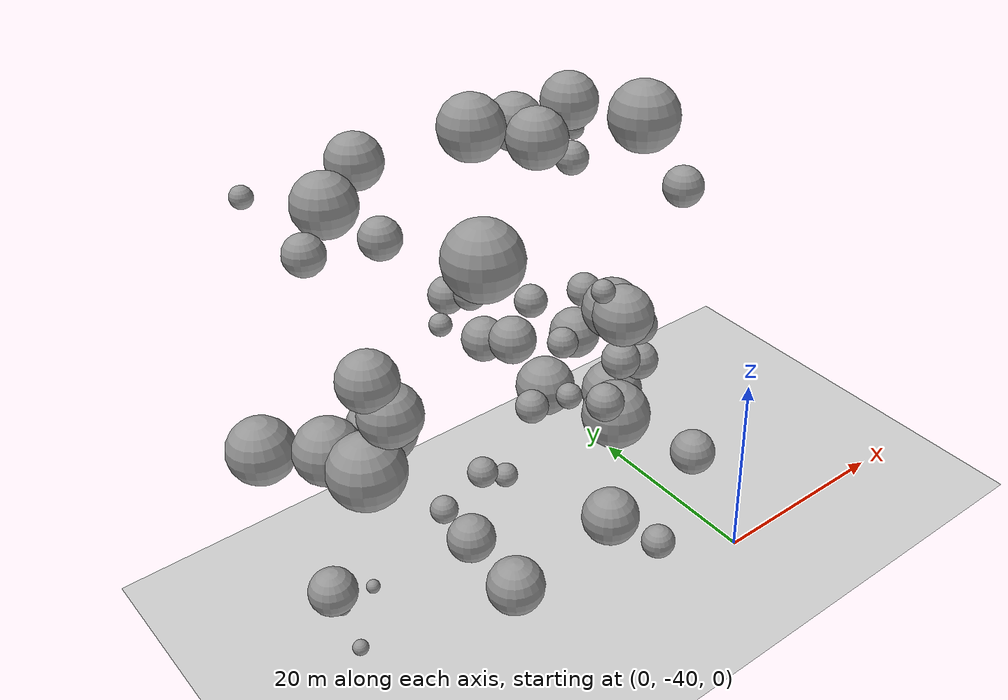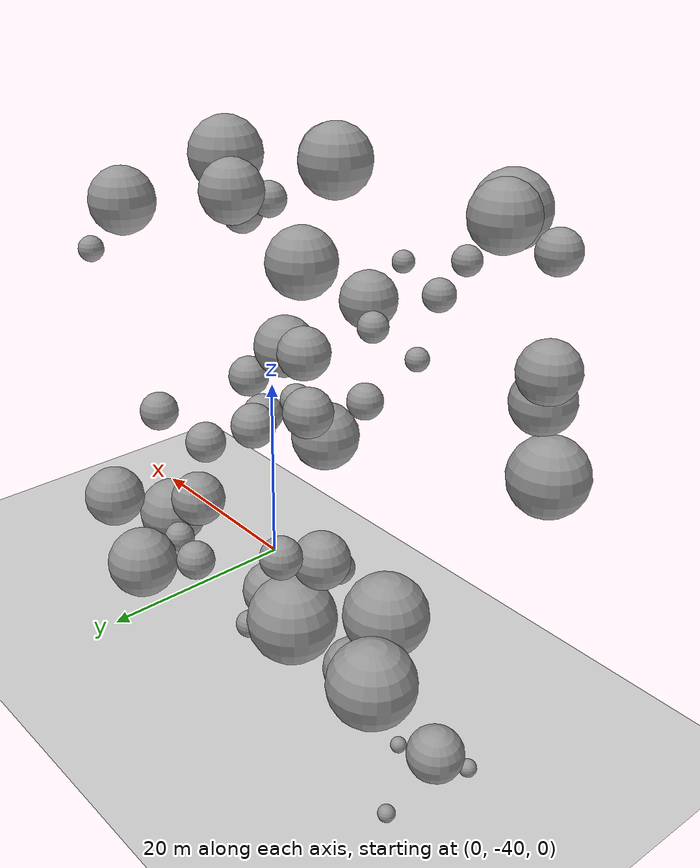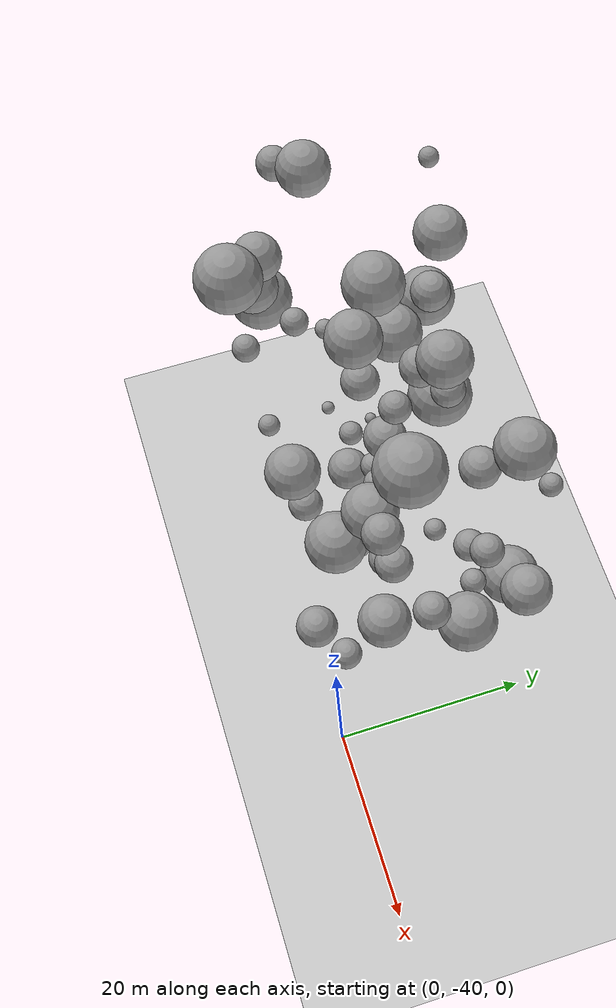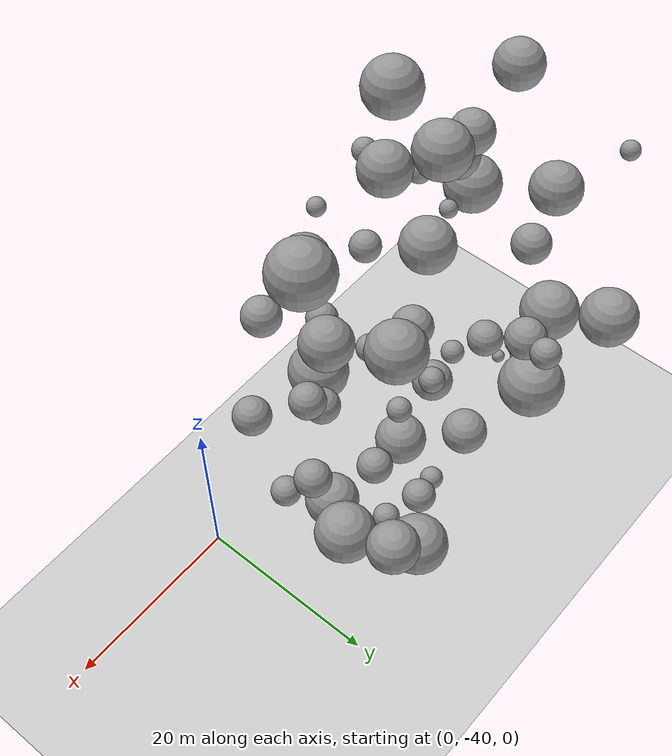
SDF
<sdf version="1.7">
 <world name="default">
  <model name="ground_plane">
   <static>1</static>
   <link name="link">
    <collision name="collision">
     <geometry><plane><normal>0 0 1</normal><size>100 100</size></plane></geometry>
     <surface>
      <contact><collide_bitmask>65535</collide_bitmask></contact>
      <friction><ode><mu>100</mu><mu2>50</mu2></ode></friction>
     </surface>
    </collision>
    <visual name="visual">
     <cast_shadows>0</cast_shadows>
     <geometry><plane><normal>0 0 1</normal><size>100 100</size></plane></geometry>
     <material>
      <script><uri>file://media/materials/scripts/gazebo.material</uri><name>Gazebo/Grey</name></script>
     </material>
    </visual>
   </link>
  </model>
  <model name="sphere_12">
   <static>1</static>
   <pose>-18 -40 38 0 0 0</pose>
   <link name="link">
    <inertial>
     <mass>368.6225510144716</mass>
     <inertia>
      <ixx>135.40584724380668</ixx>
      <iyy>135.40584724380668</iyy>
      <izz>135.40584724380668</izz>
      <ixy>0</ixy>
      <ixz>0</ixz>
      <iyz>0</iyz>
     </inertia>
    </inertial>
    <collision name="collision">
     <geometry><sphere><radius>0.9582917817031907</radius></sphere></geometry>
    </collision>
    <visual name="visual">
     <geometry><sphere><radius>0.9582917817031907</radius></sphere></geometry>
     <material>
      <script><uri>file://media/materials/scripts/gazebo.material</uri><name>Gazebo/Grey</name></script>
     </material>
    </visual>
   </link>
  </model>
  <model name="sphere_16">
   <static>1</static>
   <pose>-9 -32 23 0 0 0</pose>
   <link name="link">
    <inertial>
     <mass>2516.7862203883064</mass>
     <inertia>
      <ixx>3327.194051744051</ixx>
      <iyy>3327.194051744051</iyy>
      <izz>3327.194051744051</izz>
      <ixy>0</ixy>
      <ixz>0</ixz>
      <iyz>0</iyz>
     </inertia>
    </inertial>
    <collision name="collision">
     <geometry><sphere><radius>1.8179666252693782</radius></sphere></geometry>
    </collision>
    <visual name="visual">
     <geometry><sphere><radius>1.8179666252693782</radius></sphere></geometry>
     <material>
      <script><uri>file://media/materials/scripts/gazebo.material</uri><name>Gazebo/Grey</name></script>
     </material>
    </visual>
   </link>
  </model>
  <model name="sphere_17">
   <static>1</static>
   <pose>-16 -38 25 0 0 0</pose>
   <link name="link">
    <inertial>
     <mass>1930.9557477305789</mass>
     <inertia>
      <ixx>2139.3809296141185</ixx>
      <iyy>2139.3809296141185</iyy>
      <izz>2139.3809296141185</izz>
      <ixy>0</ixy>
      <ixz>0</ixz>
      <iyz>0</iyz>
     </inertia>
    </inertial>
    <collision name="collision">
     <geometry><sphere><radius>1.6642857854308373</radius></sphere></geometry>
    </collision>
    <visual name="visual">
     <geometry><sphere><radius>1.6642857854308373</radius></sphere></geometry>
     <material>
      <script><uri>file://media/materials/scripts/gazebo.material</uri><name>Gazebo/Grey</name></script>
     </material>
    </visual>
   </link>
  </model>
  <model name="sphere_23">
   <static>1</static>
   <pose>-37 -36 36 0 0 0</pose>
   <link name="link">
    <inertial>
     <mass>5814.141690737004</mass>
     <inertia>
      <ixx>13432.09033809364</ixx>
      <iyy>13432.09033809364</iyy>
      <izz>13432.09033809364</izz>
      <ixy>0</ixy>
      <ixz>0</ixz>
      <iyz>0</iyz>
     </inertia>
    </inertial>
    <collision name="collision">
     <geometry><sphere><radius>2.403250274974293</radius></sphere></geometry>
    </collision>
    <visual name="visual">
     <geometry><sphere><radius>2.403250274974293</radius></sphere></geometry>
     <material>
      <script><uri>file://media/materials/scripts/gazebo.material</uri><name>Gazebo/Grey</name></script>
     </material>
    </visual>
   </link>
  </model>
  <model name="sphere_33">
   <static>1</static>
   <pose>-13 -30 44 0 0 0</pose>
   <link name="link">
    <inertial>
     <mass>1204.7544548250878</mass>
     <inertia>
      <ixx>974.6121470762206</ixx>
      <iyy>974.6121470762206</iyy>
      <izz>974.6121470762206</izz>
      <ixy>0</ixy>
      <ixz>0</ixz>
      <iyz>0</iyz>
     </inertia>
    </inertial>
    <collision name="collision">
     <geometry><sphere><radius>1.4221213087885949</radius></sphere></geometry>
    </collision>
    <visual name="visual">
     <geometry><sphere><radius>1.4221213087885949</radius></sphere></geometry>
     <material>
      <script><uri>file://media/materials/scripts/gazebo.material</uri><name>Gazebo/Grey</name></script>
     </material>
    </visual>
   </link>
  </model>
  <model name="sphere_36">
   <static>1</static>
   <pose>-39 -18 19 0 0 0</pose>
   <link name="link">
    <inertial>
     <mass>13480.657258122761</mass>
     <inertia>
      <ixx>54557.27833756018</ixx>
      <iyy>54557.27833756018</iyy>
      <izz>54557.27833756018</izz>
      <ixy>0</ixy>
      <ixz>0</ixz>
      <iyz>0</iyz>
     </inertia>
    </inertial>
    <collision name="collision">
     <geometry><sphere><radius>3.180832640019842</radius></sphere></geometry>
    </collision>
    <visual name="visual">
     <geometry><sphere><radius>3.180832640019842</radius></sphere></geometry>
     <material>
      <script><uri>file://media/materials/scripts/gazebo.material</uri><name>Gazebo/Grey</name></script>
     </material>
    </visual>
   </link>
  </model>
  <model name="sphere_48">
   <static>1</static>
   <pose>-23 -29 15 0 0 0</pose>
   <link name="link">
    <inertial>
     <mass>1181.4224166897734</mass>
     <inertia>
      <ixx>943.3574064911891</ixx>
      <iyy>943.3574064911891</iyy>
      <izz>943.3574064911891</izz>
      <ixy>0</ixy>
      <ixz>0</ixz>
      <iyz>0</iyz>
     </inertia>
    </inertial>
    <collision name="collision">
     <geometry><sphere><radius>1.4128808297697373</radius></sphere></geometry>
    </collision>
    <visual name="visual">
     <geometry><sphere><radius>1.4128808297697373</radius></sphere></geometry>
     <material>
      <script><uri>file://media/materials/scripts/gazebo.material</uri><name>Gazebo/Grey</name></script>
     </material>
    </visual>
   </link>
  </model>
  <model name="sphere_49">
   <static>1</static>
   <pose>-19 -29 28 0 0 0</pose>
   <link name="link">
    <inertial>
     <mass>3951.985611144552</mass>
     <inertia>
      <ixx>7058.1872579889205</ixx>
      <iyy>7058.1872579889205</iyy>
      <izz>7058.1872579889205</izz>
      <ixy>0</ixy>
      <ixz>0</ixz>
      <iyz>0</iyz>
     </inertia>
    </inertial>
    <collision name="collision">
     <geometry><sphere><radius>2.113045822849603</radius></sphere></geometry>
    </collision>
    <visual name="visual">
     <geometry><sphere><radius>2.113045822849603</radius></sphere></geometry>
     <material>
      <script><uri>file://media/materials/scripts/gazebo.material</uri><name>Gazebo/Grey</name></script>
     </material>
    </visual>
   </link>
  </model>
  <model name="sphere_52">
   <static>1</static>
   <pose>-8 -37 3 0 0 0</pose>
   <link name="link">
    <inertial>
     <mass>2091.0997144634384</mass>
     <inertia>
      <ixx>2443.1988933341822</ixx>
      <iyy>2443.1988933341822</iyy>
      <izz>2443.1988933341822</izz>
      <ixy>0</ixy>
      <ixz>0</ixz>
      <iyz>0</iyz>
     </inertia>
    </inertial>
    <collision name="collision">
     <geometry><sphere><radius>1.7090786323603564</radius></sphere></geometry>
    </collision>
    <visual name="visual">
     <geometry><sphere><radius>1.7090786323603564</radius></sphere></geometry>
     <material>
      <script><uri>file://media/materials/scripts/gazebo.material</uri><name>Gazebo/Grey</name></script>
     </material>
    </visual>
   </link>
  </model>
  <model name="sphere_98">
   <static>1</static>
   <pose>-8 -23 13 0 0 0</pose>
   <link name="link">
    <inertial>
     <mass>1026.0396529801462</mass>
     <inertia>
      <ixx>745.775010681358</ixx>
      <iyy>745.775010681358</iyy>
      <izz>745.775010681358</izz>
      <ixy>0</ixy>
      <ixz>0</ixz>
      <iyz>0</iyz>
     </inertia>
    </inertial>
    <collision name="collision">
     <geometry><sphere><radius>1.3480060621282792</radius></sphere></geometry>
    </collision>
    <visual name="visual">
     <geometry><sphere><radius>1.3480060621282792</radius></sphere></geometry>
     <material>
      <script><uri>file://media/materials/scripts/gazebo.material</uri><name>Gazebo/Grey</name></script>
     </material>
    </visual>
   </link>
  </model>
  <model name="sphere_99">
   <static>1</static>
   <pose>-8 -19 12 0 0 0</pose>
   <link name="link">
    <inertial>
     <mass>12417.260587451741</mass>
     <inertia>
      <ixx>47574.82987236529</ixx>
      <iyy>47574.82987236529</iyy>
      <izz>47574.82987236529</izz>
      <ixy>0</ixy>
      <ixz>0</ixz>
      <iyz>0</iyz>
     </inertia>
    </inertial>
    <collision name="collision">
     <geometry><sphere><radius>3.094893640959066</radius></sphere></geometry>
    </collision>
    <visual name="visual">
     <geometry><sphere><radius>3.094893640959066</radius></sphere></geometry>
     <material>
      <script><uri>file://media/materials/scripts/gazebo.material</uri><name>Gazebo/Grey</name></script>
     </material>
    </visual>
   </link>
  </model>
  <model name="sphere_101">
   <static>1</static>
   <pose>-6 -23 25 0 0 0</pose>
   <link name="link">
    <inertial>
     <mass>1961.7685596318238</mass>
     <inertia>
      <ixx>2196.5808942865306</ixx>
      <iyy>2196.5808942865306</iyy>
      <izz>2196.5808942865306</izz>
      <ixy>0</ixy>
      <ixz>0</ixz>
      <iyz>0</iyz>
     </inertia>
    </inertial>
    <collision name="collision">
     <geometry><sphere><radius>1.6730916056221181</radius></sphere></geometry>
    </collision>
    <visual name="visual">
     <geometry><sphere><radius>1.6730916056221181</radius></sphere></geometry>
     <material>
      <script><uri>file://media/materials/scripts/gazebo.material</uri><name>Gazebo/Grey</name></script>
     </material>
    </visual>
   </link>
  </model>
  <model name="sphere_104">
   <static>1</static>
   <pose>-27 -35 39 0 0 0</pose>
   <link name="link">
    <inertial>
     <mass>906.0350894639565</mass>
     <inertia>
      <ixx>606.1441915246354</ixx>
      <iyy>606.1441915246354</iyy>
      <izz>606.1441915246354</izz>
      <ixy>0</ixy>
      <ixz>0</ixz>
      <iyz>0</iyz>
     </inertia>
    </inertial>
    <collision name="collision">
     <geometry><sphere><radius>1.293258880947194</radius></sphere></geometry>
    </collision>
    <visual name="visual">
     <geometry><sphere><radius>1.293258880947194</radius></sphere></geometry>
     <material>
      <script><uri>file://media/materials/scripts/gazebo.material</uri><name>Gazebo/Grey</name></script>
     </material>
    </visual>
   </link>
  </model>
  <model name="sphere_107">
   <static>1</static>
   <pose>-7 -40 16 0 0 0</pose>
   <link name="link">
    <inertial>
     <mass>3811.0649486110915</mass>
     <inertia>
      <ixx>6643.722772205068</ixx>
      <iyy>6643.722772205068</iyy>
      <izz>6643.722772205068</izz>
      <ixy>0</ixy>
      <ixz>0</ixz>
      <iyz>0</iyz>
     </inertia>
    </inertial>
    <collision name="collision">
     <geometry><sphere><radius>2.087625438593993</radius></sphere></geometry>
    </collision>
    <visual name="visual">
     <geometry><sphere><radius>2.087625438593993</radius></sphere></geometry>
     <material>
      <script><uri>file://media/materials/scripts/gazebo.material</uri><name>Gazebo/Grey</name></script>
     </material>
    </visual>
   </link>
  </model>
  <model name="sphere_111">
   <static>1</static>
   <pose>-22 -32 2 0 0 0</pose>
   <link name="link">
    <inertial>
     <mass>10384.513973362735</mass>
     <inertia>
      <ixx>35316.51789705856</ixx>
      <iyy>35316.51789705856</iyy>
      <izz>35316.51789705856</izz>
      <ixy>0</ixy>
      <ixz>0</ixz>
      <iyz>0</iyz>
     </inertia>
    </inertial>
    <collision name="collision">
     <geometry><sphere><radius>2.915854541548535</radius></sphere></geometry>
    </collision>
    <visual name="visual">
     <geometry><sphere><radius>2.915854541548535</radius></sphere></geometry>
     <material>
      <script><uri>file://media/materials/scripts/gazebo.material</uri><name>Gazebo/Grey</name></script>
     </material>
    </visual>
   </link>
  </model>
  <model name="sphere_124">
   <static>1</static>
   <pose>-39 -33 46 0 0 0</pose>
   <link name="link">
    <inertial>
     <mass>1606.9152879143649</mass>
     <inertia>
      <ixx>1575.152315965459</ixx>
      <iyy>1575.152315965459</iyy>
      <izz>1575.152315965459</izz>
      <ixy>0</ixy>
      <ixz>0</ixz>
      <iyz>0</iyz>
     </inertia>
    </inertial>
    <collision name="collision">
     <geometry><sphere><radius>1.5654341044185816</radius></sphere></geometry>
    </collision>
    <visual name="visual">
     <geometry><sphere><radius>1.5654341044185816</radius></sphere></geometry>
     <material>
      <script><uri>file://media/materials/scripts/gazebo.material</uri><name>Gazebo/Grey</name></script>
     </material>
    </visual>
   </link>
  </model>
  <model name="sphere_132">
   <static>1</static>
   <pose>-38 -36 28 0 0 0</pose>
   <link name="link">
    <inertial>
     <mass>13193.030634903093</mass>
     <inertia>
      <ixx>52631.030074753624</ixx>
      <iyy>52631.030074753624</iyy>
      <izz>52631.030074753624</izz>
      <ixy>0</ixy>
      <ixz>0</ixz>
      <iyz>0</iyz>
     </inertia>
    </inertial>
    <collision name="collision">
     <geometry><sphere><radius>3.1580474705167965</radius></sphere></geometry>
    </collision>
    <visual name="visual">
     <geometry><sphere><radius>3.1580474705167965</radius></sphere></geometry>
     <material>
      <script><uri>file://media/materials/scripts/gazebo.material</uri><name>Gazebo/Grey</name></script>
     </material>
    </visual>
   </link>
  </model>
  <model name="sphere_141">
   <static>1</static>
   <pose>-12 -22 13 0 0 0</pose>
   <link name="link">
    <inertial>
     <mass>2086.963696200414</mass>
     <inertia>
      <ixx>2435.150136856274</ixx>
      <iyy>2435.150136856274</iyy>
      <izz>2435.150136856274</izz>
      <ixy>0</ixy>
      <ixz>0</ixz>
      <iyz>0</iyz>
     </inertia>
    </inertial>
    <collision name="collision">
     <geometry><sphere><radius>1.7079510843372572</radius></sphere></geometry>
    </collision>
    <visual name="visual">
     <geometry><sphere><radius>1.7079510843372572</radius></sphere></geometry>
     <material>
      <script><uri>file://media/materials/scripts/gazebo.material</uri><name>Gazebo/Grey</name></script>
     </material>
    </visual>
   </link>
  </model>
  <model name="sphere_143">
   <static>1</static>
   <pose>-6 -21 44 0 0 0</pose>
   <link name="link">
    <inertial>
     <mass>7923.58335161195</mass>
     <inertia>
      <ixx>22501.094130969243</ixx>
      <iyy>22501.094130969243</iyy>
      <izz>22501.094130969243</izz>
      <ixy>0</ixy>
      <ixz>0</ixz>
      <iyz>0</iyz>
     </inertia>
    </inertial>
    <collision name="collision">
     <geometry><sphere><radius>2.66447105775317</radius></sphere></geometry>
    </collision>
    <visual name="visual">
     <geometry><sphere><radius>2.66447105775317</radius></sphere></geometry>
     <material>
      <script><uri>file://media/materials/scripts/gazebo.material</uri><name>Gazebo/Grey</name></script>
     </material>
    </visual>
   </link>
  </model>
  <model name="sphere_144">
   <static>1</static>
   <pose>-4 -25 13 0 0 0</pose>
   <link name="link">
    <inertial>
     <mass>12699.523221600728</mass>
     <inertia>
      <ixx>49390.86278290255</ixx>
      <iyy>49390.86278290255</iyy>
      <izz>49390.86278290255</izz>
      <ixy>0</ixy>
      <ixz>0</ixz>
      <iyz>0</iyz>
     </inertia>
    </inertial>
    <collision name="collision">
     <geometry><sphere><radius>3.118168661276186</radius></sphere></geometry>
    </collision>
    <visual name="visual">
     <geometry><sphere><radius>3.118168661276186</radius></sphere></geometry>
     <material>
      <script><uri>file://media/materials/scripts/gazebo.material</uri><name>Gazebo/Grey</name></script>
     </material>
    </visual>
   </link>
  </model>
  <model name="sphere_155">
   <static>1</static>
   <pose>-28 -21 45 0 0 0</pose>
   <link name="link">
    <inertial>
     <mass>5849.146536215281</mass>
     <inertia>
      <ixx>13567.143584981093</ixx>
      <iyy>13567.143584981093</iyy>
      <izz>13567.143584981093</izz>
      <ixy>0</ixy>
      <ixz>0</ixz>
      <iyz>0</iyz>
     </inertia>
    </inertial>
    <collision name="collision">
     <geometry><sphere><radius>2.408063661706199</radius></sphere></geometry>
    </collision>
    <visual name="visual">
     <geometry><sphere><radius>2.408063661706199</radius></sphere></geometry>
     <material>
      <script><uri>file://media/materials/scripts/gazebo.material</uri><name>Gazebo/Grey</name></script>
     </material>
    </visual>
   </link>
  </model>
  <model name="sphere_180">
   <static>1</static>
   <pose>-13 -36 21 0 0 0</pose>
   <link name="link">
    <inertial>
     <mass>12612.715319976483</mass>
     <inertia>
      <ixx>48829.45842890999</ixx>
      <iyy>48829.45842890999</iyy>
      <izz>48829.45842890999</izz>
      <ixy>0</ixy>
      <ixz>0</ixz>
      <iyz>0</iyz>
     </inertia>
    </inertial>
    <collision name="collision">
     <geometry><sphere><radius>3.111047638517615</radius></sphere></geometry>
    </collision>
    <visual name="visual">
     <geometry><sphere><radius>3.111047638517615</radius></sphere></geometry>
     <material>
      <script><uri>file://media/materials/scripts/gazebo.material</uri><name>Gazebo/Grey</name></script>
     </material>
    </visual>
   </link>
  </model>
  <model name="sphere_203">
   <static>1</static>
   <pose>-15 -39 34 0 0 0</pose>
   <link name="link">
    <inertial>
     <mass>6996.31937220152</mass>
     <inertia>
      <ixx>18285.92617676409</ixx>
      <iyy>18285.92617676409</iyy>
      <izz>18285.92617676409</izz>
      <ixy>0</ixy>
      <ixz>0</ixz>
      <iyz>0</iyz>
     </inertia>
    </inertial>
    <collision name="collision">
     <geometry><sphere><radius>2.556193182919487</radius></sphere></geometry>
    </collision>
    <visual name="visual">
     <geometry><sphere><radius>2.556193182919487</radius></sphere></geometry>
     <material>
      <script><uri>file://media/materials/scripts/gazebo.material</uri><name>Gazebo/Grey</name></script>
     </material>
    </visual>
   </link>
  </model>
  <model name="sphere_213">
   <static>1</static>
   <pose>-29 -22 22 0 0 0</pose>
   <link name="link">
    <inertial>
     <mass>4546.321321735309</mass>
     <inertia>
      <ixx>8914.58500446265</ixx>
      <iyy>8914.58500446265</iyy>
      <izz>8914.58500446265</izz>
      <ixy>0</ixy>
      <ixz>0</ixz>
      <iyz>0</iyz>
     </inertia>
    </inertial>
    <collision name="collision">
     <geometry><sphere><radius>2.214065710329736</radius></sphere></geometry>
    </collision>
    <visual name="visual">
     <geometry><sphere><radius>2.214065710329736</radius></sphere></geometry>
     <material>
      <script><uri>file://media/materials/scripts/gazebo.material</uri><name>Gazebo/Grey</name></script>
     </material>
    </visual>
   </link>
  </model>
  <model name="sphere_214">
   <static>1</static>
   <pose>-10 -32 4 0 0 0</pose>
   <link name="link">
    <inertial>
     <mass>10904.833083655249</mass>
     <inertia>
      <ixx>38314.74643413864</ixx>
      <iyy>38314.74643413864</iyy>
      <izz>38314.74643413864</izz>
      <ixy>0</ixy>
      <ixz>0</ixz>
      <iyz>0</iyz>
     </inertia>
    </inertial>
    <collision name="collision">
     <geometry><sphere><radius>2.9637629937328875</radius></sphere></geometry>
    </collision>
    <visual name="visual">
     <geometry><sphere><radius>2.9637629937328875</radius></sphere></geometry>
     <material>
      <script><uri>file://media/materials/scripts/gazebo.material</uri><name>Gazebo/Grey</name></script>
     </material>
    </visual>
   </link>
  </model>
  <model name="sphere_220">
   <static>1</static>
   <pose>-28 -30 14 0 0 0</pose>
   <link name="link">
    <inertial>
     <mass>864.8097113493432</mass>
     <inertia>
      <ixx>560.8781413144534</ixx>
      <iyy>560.8781413144534</iyy>
      <izz>560.8781413144534</izz>
      <ixy>0</ixy>
      <ixz>0</ixz>
      <iyz>0</iyz>
     </inertia>
    </inertial>
    <collision name="collision">
     <geometry><sphere><radius>1.2733388297782782</radius></sphere></geometry>
    </collision>
    <visual name="visual">
     <geometry><sphere><radius>1.2733388297782782</radius></sphere></geometry>
     <material>
      <script><uri>file://media/materials/scripts/gazebo.material</uri><name>Gazebo/Grey</name></script>
     </material>
    </visual>
   </link>
  </model>
  <model name="sphere_226">
   <static>1</static>
   <pose>-34 -26 5 0 0 0</pose>
   <link name="link">
    <inertial>
     <mass>118.9997576628734</mass>
     <inertia>
      <ixx>20.570477833755646</ixx>
      <iyy>20.570477833755646</iyy>
      <izz>20.570477833755646</izz>
      <ixy>0</ixy>
      <ixz>0</ixz>
      <iyz>0</iyz>
     </inertia>
    </inertial>
    <collision name="collision">
     <geometry><sphere><radius>0.657384039755419</radius></sphere></geometry>
    </collision>
    <visual name="visual">
     <geometry><sphere><radius>0.657384039755419</radius></sphere></geometry>
     <material>
      <script><uri>file://media/materials/scripts/gazebo.material</uri><name>Gazebo/Grey</name></script>
     </material>
    </visual>
   </link>
  </model>
  <model name="sphere_228">
   <static>1</static>
   <pose>-36 -23 1 0 0 0</pose>
   <link name="link">
    <inertial>
     <mass>159.8089968696694</mass>
     <inertia>
      <ixx>33.62556787306376</ixx>
      <iyy>33.62556787306376</iyy>
      <izz>33.62556787306376</izz>
      <ixy>0</ixy>
      <ixz>0</ixz>
      <iyz>0</iyz>
     </inertia>
    </inertial>
    <collision name="collision">
     <geometry><sphere><radius>0.7252775010855034</radius></sphere></geometry>
    </collision>
    <visual name="visual">
     <geometry><sphere><radius>0.7252775010855034</radius></sphere></geometry>
     <material>
      <script><uri>file://media/materials/scripts/gazebo.material</uri><name>Gazebo/Grey</name></script>
     </material>
    </visual>
   </link>
  </model>
  <model name="sphere_255">
   <static>1</static>
   <pose>-7 -32 26 0 0 0</pose>
   <link name="link">
    <inertial>
     <mass>2596.536928093853</mass>
     <inertia>
      <ixx>3504.7611360817064</ixx>
      <iyy>3504.7611360817064</iyy>
      <izz>3504.7611360817064</izz>
      <ixy>0</ixy>
      <ixz>0</ixz>
      <iyz>0</iyz>
     </inertia>
    </inertial>
    <collision name="collision">
     <geometry><sphere><radius>1.8369695810341364</radius></sphere></geometry>
    </collision>
    <visual name="visual">
     <geometry><sphere><radius>1.8369695810341364</radius></sphere></geometry>
     <material>
      <script><uri>file://media/materials/scripts/gazebo.material</uri><name>Gazebo/Grey</name></script>
     </material>
    </visual>
   </link>
  </model>
  <model name="sphere_260">
   <static>1</static>
   <pose>-28 -19 23 0 0 0</pose>
   <link name="link">
    <inertial>
     <mass>1765.4004040823502</mass>
     <inertia>
      <ixx>1842.494872322811</ixx>
      <iyy>1842.494872322811</iyy>
      <izz>1842.494872322811</izz>
      <ixy>0</ixy>
      <ixz>0</ixz>
      <iyz>0</iyz>
     </inertia>
    </inertial>
    <collision name="collision">
     <geometry><sphere><radius>1.6152938421511194</radius></sphere></geometry>
    </collision>
    <visual name="visual">
     <geometry><sphere><radius>1.6152938421511194</radius></sphere></geometry>
     <material>
      <script><uri>file://media/materials/scripts/gazebo.material</uri><name>Gazebo/Grey</name></script>
     </material>
    </visual>
   </link>
  </model>
  <model name="sphere_269">
   <static>1</static>
   <pose>-18 -32 48 0 0 0</pose>
   <link name="link">
    <inertial>
     <mass>6380.8096816685165</mass>
     <inertia>
      <ixx>15684.13495490278</ixx>
      <iyy>15684.13495490278</iyy>
      <izz>15684.13495490278</izz>
      <ixy>0</ixy>
      <ixz>0</ixz>
      <iyz>0</iyz>
     </inertia>
    </inertial>
    <collision name="collision">
     <geometry><sphere><radius>2.478919329852025</radius></sphere></geometry>
    </collision>
    <visual name="visual">
     <geometry><sphere><radius>2.478919329852025</radius></sphere></geometry>
     <material>
      <script><uri>file://media/materials/scripts/gazebo.material</uri><name>Gazebo/Grey</name></script>
     </material>
    </visual>
   </link>
  </model>
  <model name="sphere_277">
   <static>1</static>
   <pose>-25 -40 40 0 0 0</pose>
   <link name="link">
    <inertial>
     <mass>797.4098218891112</mass>
     <inertia>
      <ixx>489.9332181729764</ixx>
      <iyy>489.9332181729764</iyy>
      <izz>489.9332181729764</izz>
      <ixy>0</ixy>
      <ixz>0</ixz>
      <iyz>0</iyz>
     </inertia>
    </inertial>
    <collision name="collision">
     <geometry><sphere><radius>1.239360518854987</radius></sphere></geometry>
    </collision>
    <visual name="visual">
     <geometry><sphere><radius>1.239360518854987</radius></sphere></geometry>
     <material>
      <script><uri>file://media/materials/scripts/gazebo.material</uri><name>Gazebo/Grey</name></script>
     </material>
    </visual>
   </link>
  </model>
  <model name="sphere_305">
   <static>1</static>
   <pose>-21 -22 30 0 0 0</pose>
   <link name="link">
    <inertial>
     <mass>2121.220282065474</mass>
     <inertia>
      <ixx>2502.133841233977</ixx>
      <iyy>2502.133841233977</iyy>
      <izz>2502.133841233977</izz>
      <ixy>0</ixy>
      <ixz>0</ixz>
      <iyz>0</iyz>
     </inertia>
    </inertial>
    <collision name="collision">
     <geometry><sphere><radius>1.7172455009209229</radius></sphere></geometry>
    </collision>
    <visual name="visual">
     <geometry><sphere><radius>1.7172455009209229</radius></sphere></geometry>
     <material>
      <script><uri>file://media/materials/scripts/gazebo.material</uri><name>Gazebo/Grey</name></script>
     </material>
    </visual>
   </link>
  </model>
  <model name="sphere_329">
   <static>1</static>
   <pose>-4 -19 17 0 0 0</pose>
   <link name="link">
    <inertial>
     <mass>7705.574619644651</mass>
     <inertia>
      <ixx>21478.764808801563</ixx>
      <iyy>21478.764808801563</iyy>
      <izz>21478.764808801563</izz>
      <ixy>0</ixy>
      <ixz>0</ixz>
      <iyz>0</iyz>
     </inertia>
    </inertial>
    <collision name="collision">
     <geometry><sphere><radius>2.6398067825761657</radius></sphere></geometry>
    </collision>
    <visual name="visual">
     <geometry><sphere><radius>2.6398067825761657</radius></sphere></geometry>
     <material>
      <script><uri>file://media/materials/scripts/gazebo.material</uri><name>Gazebo/Grey</name></script>
     </material>
    </visual>
   </link>
  </model>
  <model name="sphere_332">
   <static>1</static>
   <pose>-11 -33 30 0 0 0</pose>
   <link name="link">
    <inertial>
     <mass>8435.76291034026</mass>
     <inertia>
      <ixx>24977.07208445786</ixx>
      <iyy>24977.07208445786</iyy>
      <izz>24977.07208445786</izz>
      <ixy>0</ixy>
      <ixz>0</ixz>
      <iyz>0</iyz>
     </inertia>
    </inertial>
    <collision name="collision">
     <geometry><sphere><radius>2.7206870240915806</radius></sphere></geometry>
    </collision>
    <visual name="visual">
     <geometry><sphere><radius>2.7206870240915806</radius></sphere></geometry>
     <material>
      <script><uri>file://media/materials/scripts/gazebo.material</uri><name>Gazebo/Grey</name></script>
     </material>
    </visual>
   </link>
  </model>
  <model name="sphere_333">
   <static>1</static>
   <pose>-26 -31 10 0 0 0</pose>
   <link name="link">
    <inertial>
     <mass>4922.369708132432</mass>
     <inertia>
      <ixx>10177.113880762141</ixx>
      <iyy>10177.113880762141</iyy>
      <izz>10177.113880762141</izz>
      <ixy>0</ixy>
      <ixz>0</ixz>
      <iyz>0</iyz>
     </inertia>
    </inertial>
    <collision name="collision">
     <geometry><sphere><radius>2.2735012992203876</radius></sphere></geometry>
    </collision>
    <visual name="visual">
     <geometry><sphere><radius>2.2735012992203876</radius></sphere></geometry>
     <material>
      <script><uri>file://media/materials/scripts/gazebo.material</uri><name>Gazebo/Grey</name></script>
     </material>
    </visual>
   </link>
  </model>
  <model name="sphere_335">
   <static>1</static>
   <pose>-38 -30 3 0 0 0</pose>
   <link name="link">
    <inertial>
     <mass>175.77986699827252</mass>
     <inertia>
      <ixx>39.41088049061243</ixx>
      <iyy>39.41088049061243</iyy>
      <izz>39.41088049061243</izz>
      <ixy>0</ixy>
      <ixz>0</ixz>
      <iyz>0</iyz>
     </inertia>
    </inertial>
    <collision name="collision">
     <geometry><sphere><radius>0.7486753036508622</radius></sphere></geometry>
    </collision>
    <visual name="visual">
     <geometry><sphere><radius>0.7486753036508622</radius></sphere></geometry>
     <material>
      <script><uri>file://media/materials/scripts/gazebo.material</uri><name>Gazebo/Grey</name></script>
     </material>
    </visual>
   </link>
  </model>
  <model name="sphere_345">
   <static>1</static>
   <pose>-28 -20 17 0 0 0</pose>
   <link name="link">
    <inertial>
     <mass>17362.097484173202</mass>
     <inertia>
      <ixx>83177.25218279517</ixx>
      <iyy>83177.25218279517</iyy>
      <izz>83177.25218279517</izz>
      <ixy>0</ixy>
      <ixz>0</ixz>
      <iyz>0</iyz>
     </inertia>
    </inertial>
    <collision name="collision">
     <geometry><sphere><radius>3.4607576986666895</radius></sphere></geometry>
    </collision>
    <visual name="visual">
     <geometry><sphere><radius>3.4607576986666895</radius></sphere></geometry>
     <material>
      <script><uri>file://media/materials/scripts/gazebo.material</uri><name>Gazebo/Grey</name></script>
     </material>
    </visual>
   </link>
  </model>
  <model name="sphere_346">
   <static>1</static>
   <pose>-16 -20 22 0 0 0</pose>
   <link name="link">
    <inertial>
     <mass>4310.441712914325</mass>
     <inertia>
      <ixx>8157.12679639695</ixx>
      <iyy>8157.12679639695</iyy>
      <izz>8157.12679639695</izz>
      <ixy>0</ixy>
      <ixz>0</ixz>
      <iyz>0</iyz>
     </inertia>
    </inertial>
    <collision name="collision">
     <geometry><sphere><radius>2.17509245797455</radius></sphere></geometry>
    </collision>
    <visual name="visual">
     <geometry><sphere><radius>2.17509245797455</radius></sphere></geometry>
     <material>
      <script><uri>file://media/materials/scripts/gazebo.material</uri><name>Gazebo/Grey</name></script>
     </material>
    </visual>
   </link>
  </model>
  <model name="sphere_347">
   <static>1</static>
   <pose>-38 -26 7 0 0 0</pose>
   <link name="link">
    <inertial>
     <mass>5004.565322339401</mass>
     <inertia>
      <ixx>10461.92307137965</ixx>
      <iyy>10461.92307137965</iyy>
      <izz>10461.92307137965</izz>
      <ixy>0</ixy>
      <ixz>0</ixz>
      <iyz>0</iyz>
     </inertia>
    </inertial>
    <collision name="collision">
     <geometry><sphere><radius>2.2860861067736904</radius></sphere></geometry>
    </collision>
    <visual name="visual">
     <geometry><sphere><radius>2.2860861067736904</radius></sphere></geometry>
     <material>
      <script><uri>file://media/materials/scripts/gazebo.material</uri><name>Gazebo/Grey</name></script>
     </material>
    </visual>
   </link>
  </model>
  <model name="sphere_352">
   <static>1</static>
   <pose>-22 -29 49 0 0 0</pose>
   <link name="link">
    <inertial>
     <mass>8288.497350213518</mass>
     <inertia>
      <ixx>24254.589201505747</ixx>
      <iyy>24254.589201505747</iyy>
      <izz>24254.589201505747</izz>
      <ixy>0</ixy>
      <ixz>0</ixz>
      <iyz>0</iyz>
     </inertia>
    </inertial>
    <collision name="collision">
     <geometry><sphere><radius>2.7047620516036273</radius></sphere></geometry>
    </collision>
    <visual name="visual">
     <geometry><sphere><radius>2.7047620516036273</radius></sphere></geometry>
     <material>
      <script><uri>file://media/materials/scripts/gazebo.material</uri><name>Gazebo/Grey</name></script>
     </material>
    </visual>
   </link>
  </model>
  <model name="sphere_378">
   <static>1</static>
   <pose>-36 -37 33 0 0 0</pose>
   <link name="link">
    <inertial>
     <mass>6932.671321857758</mass>
     <inertia>
      <ixx>18009.511644339407</ixx>
      <iyy>18009.511644339407</iyy>
      <izz>18009.511644339407</izz>
      <ixy>0</ixy>
      <ixz>0</ixz>
      <iyz>0</iyz>
     </inertia>
    </inertial>
    <collision name="collision">
     <geometry><sphere><radius>2.5484180189237424</radius></sphere></geometry>
    </collision>
    <visual name="visual">
     <geometry><sphere><radius>2.5484180189237424</radius></sphere></geometry>
     <material>
      <script><uri>file://media/materials/scripts/gazebo.material</uri><name>Gazebo/Grey</name></script>
     </material>
    </visual>
   </link>
  </model>
  <model name="sphere_400">
   <static>1</static>
   <pose>-36 -31 48 0 0 0</pose>
   <link name="link">
    <inertial>
     <mass>6159.7890996448195</mass>
     <inertia>
      <ixx>14789.176432110677</ixx>
      <iyy>14789.176432110677</iyy>
      <izz>14789.176432110677</izz>
      <ixy>0</ixy>
      <ixz>0</ixz>
      <iyz>0</iyz>
     </inertia>
    </inertial>
    <collision name="collision">
     <geometry><sphere><radius>2.4499604743966725</radius></sphere></geometry>
    </collision>
    <visual name="visual">
     <geometry><sphere><radius>2.4499604743966725</radius></sphere></geometry>
     <material>
      <script><uri>file://media/materials/scripts/gazebo.material</uri><name>Gazebo/Grey</name></script>
     </material>
    </visual>
   </link>
  </model>
  <model name="sphere_402">
   <static>1</static>
   <pose>-29 -40 45 0 0 0</pose>
   <link name="link">
    <inertial>
     <mass>12009.328019858487</mass>
     <inertia>
      <ixx>44998.57529992624</ixx>
      <iyy>44998.57529992624</iyy>
      <izz>44998.57529992624</izz>
      <ixy>0</ixy>
      <ixz>0</ixz>
      <iyz>0</iyz>
     </inertia>
    </inertial>
    <collision name="collision">
     <geometry><sphere><radius>3.060624374691292</radius></sphere></geometry>
    </collision>
    <visual name="visual">
     <geometry><sphere><radius>3.060624374691292</radius></sphere></geometry>
     <material>
      <script><uri>file://media/materials/scripts/gazebo.material</uri><name>Gazebo/Grey</name></script>
     </material>
    </visual>
   </link>
  </model>
  <model name="sphere_412">
   <static>1</static>
   <pose>-35 -23 20 0 0 0</pose>
   <link name="link">
    <inertial>
     <mass>13168.459807059222</mass>
     <inertia>
      <ixx>52467.76394919113</ixx>
      <iyy>52467.76394919113</iyy>
      <izz>52467.76394919113</izz>
      <ixy>0</ixy>
      <ixz>0</ixz>
      <iyz>0</iyz>
     </inertia>
    </inertial>
    <collision name="collision">
     <geometry><sphere><radius>3.156085726104879</radius></sphere></geometry>
    </collision>
    <visual name="visual">
     <geometry><sphere><radius>3.156085726104879</radius></sphere></geometry>
     <material>
      <script><uri>file://media/materials/scripts/gazebo.material</uri><name>Gazebo/Grey</name></script>
     </material>
    </visual>
   </link>
  </model>
  <model name="sphere_413">
   <static>1</static>
   <pose>-15 -31 27 0 0 0</pose>
   <link name="link">
    <inertial>
     <mass>1120.9418170652646</mass>
     <inertia>
      <ixx>864.2499638408716</ixx>
      <iyy>864.2499638408716</iyy>
      <izz>864.2499638408716</izz>
      <ixy>0</ixy>
      <ixz>0</ixz>
      <iyz>0</iyz>
     </inertia>
    </inertial>
    <collision name="collision">
     <geometry><sphere><radius>1.388347408270923</radius></sphere></geometry>
    </collision>
    <visual name="visual">
     <geometry><sphere><radius>1.388347408270923</radius></sphere></geometry>
     <material>
      <script><uri>file://media/materials/scripts/gazebo.material</uri><name>Gazebo/Grey</name></script>
     </material>
    </visual>
   </link>
  </model>
  <model name="sphere_423">
   <static>1</static>
   <pose>-28 -32 35 0 0 0</pose>
   <link name="link">
    <inertial>
     <mass>337.83247195723965</mass>
     <inertia>
      <ixx>117.08553285912086</ixx>
      <iyy>117.08553285912086</iyy>
      <izz>117.08553285912086</izz>
      <ixy>0</ixy>
      <ixz>0</ixz>
      <iyz>0</iyz>
     </inertia>
    </inertial>
    <collision name="collision">
     <geometry><sphere><radius>0.9308311903541919</radius></sphere></geometry>
    </collision>
    <visual name="visual">
     <geometry><sphere><radius>0.9308311903541919</radius></sphere></geometry>
     <material>
      <script><uri>file://media/materials/scripts/gazebo.material</uri><name>Gazebo/Grey</name></script>
     </material>
    </visual>
   </link>
  </model>
  <model name="sphere_427">
   <static>1</static>
   <pose>-4 -34 40 0 0 0</pose>
   <link name="link">
    <inertial>
     <mass>2530.6732854500774</mass>
     <inertia>
      <ixx>3357.8481525817983</ixx>
      <iyy>3357.8481525817983</iyy>
      <izz>3357.8481525817983</izz>
      <ixy>0</ixy>
      <ixz>0</ixz>
      <iyz>0</iyz>
     </inertia>
    </inertial>
    <collision name="collision">
     <geometry><sphere><radius>1.8213042055642086</radius></sphere></geometry>
    </collision>
    <visual name="visual">
     <geometry><sphere><radius>1.8213042055642086</radius></sphere></geometry>
     <material>
      <script><uri>file://media/materials/scripts/gazebo.material</uri><name>Gazebo/Grey</name></script>
     </material>
    </visual>
   </link>
  </model>
  <model name="sphere_428">
   <static>1</static>
   <pose>-27 -22 38 0 0 0</pose>
   <link name="link">
    <inertial>
     <mass>2811.247204802127</mass>
     <inertia>
      <ixx>4000.976306337863</ixx>
      <iyy>4000.976306337863</iyy>
      <izz>4000.976306337863</izz>
      <ixy>0</ixy>
      <ixz>0</ixz>
      <iyz>0</iyz>
     </inertia>
    </inertial>
    <collision name="collision">
     <geometry><sphere><radius>1.8862683416031238</radius></sphere></geometry>
    </collision>
    <visual name="visual">
     <geometry><sphere><radius>1.8862683416031238</radius></sphere></geometry>
     <material>
      <script><uri>file://media/materials/scripts/gazebo.material</uri><name>Gazebo/Grey</name></script>
     </material>
    </visual>
   </link>
  </model>
  <model name="sphere_435">
   <static>1</static>
   <pose>-4 -29 19 0 0 0</pose>
   <link name="link">
    <inertial>
     <mass>2856.6895764252695</mass>
     <inertia>
      <ixx>4109.345612069724</ixx>
      <iyy>4109.345612069724</iyy>
      <izz>4109.345612069724</izz>
      <ixy>0</ixy>
      <ixz>0</ixz>
      <iyz>0</iyz>
     </inertia>
    </inertial>
    <collision name="collision">
     <geometry><sphere><radius>1.8963775860858618</radius></sphere></geometry>
    </collision>
    <visual name="visual">
     <geometry><sphere><radius>1.8963775860858618</radius></sphere></geometry>
     <material>
      <script><uri>file://media/materials/scripts/gazebo.material</uri><name>Gazebo/Grey</name></script>
     </material>
    </visual>
   </link>
  </model>
  <model name="sphere_459">
   <static>1</static>
   <pose>-37 -19 44 0 0 0</pose>
   <link name="link">
    <inertial>
     <mass>361.3682852704744</mass>
     <inertia>
      <ixx>130.9938711655489</ixx>
      <iyy>130.9938711655489</iyy>
      <izz>130.9938711655489</izz>
      <ixy>0</ixy>
      <ixz>0</ixz>
      <iyz>0</iyz>
     </inertia>
    </inertial>
    <collision name="collision">
     <geometry><sphere><radius>0.9519638904965265</radius></sphere></geometry>
    </collision>
    <visual name="visual">
     <geometry><sphere><radius>0.9519638904965265</radius></sphere></geometry>
     <material>
      <script><uri>file://media/materials/scripts/gazebo.material</uri><name>Gazebo/Grey</name></script>
     </material>
    </visual>
   </link>
  </model>
  <model name="sphere_479">
   <static>1</static>
   <pose>-6 -31 46 0 0 0</pose>
   <link name="link">
    <inertial>
     <mass>12848.604485126918</mass>
     <inertia>
      <ixx>50360.98155211215</ixx>
      <iyy>50360.98155211215</iyy>
      <izz>50360.98155211215</izz>
      <ixy>0</ixy>
      <ixz>0</ixz>
      <iyz>0</iyz>
     </inertia>
    </inertial>
    <collision name="collision">
     <geometry><sphere><radius>3.130322746871004</radius></sphere></geometry>
    </collision>
    <visual name="visual">
     <geometry><sphere><radius>3.130322746871004</radius></sphere></geometry>
     <material>
      <script><uri>file://media/materials/scripts/gazebo.material</uri><name>Gazebo/Grey</name></script>
     </material>
    </visual>
   </link>
  </model>
  <model name="sphere_485">
   <static>1</static>
   <pose>-15 -25 46 0 0 0</pose>
   <link name="link">
    <inertial>
     <mass>6285.9376546798885</mass>
     <inertia>
      <ixx>15297.402737358037</ixx>
      <iyy>15297.402737358037</iyy>
      <izz>15297.402737358037</izz>
      <ixy>0</ixy>
      <ixz>0</ixz>
      <iyz>0</iyz>
     </inertia>
    </inertial>
    <collision name="collision">
     <geometry><sphere><radius>2.466572129589358</radius></sphere></geometry>
    </collision>
    <visual name="visual">
     <geometry><sphere><radius>2.466572129589358</radius></sphere></geometry>
     <material>
      <script><uri>file://media/materials/scripts/gazebo.material</uri><name>Gazebo/Grey</name></script>
     </material>
    </visual>
   </link>
  </model>
  <model name="sphere_487">
   <static>1</static>
   <pose>-17 -24 8 0 0 0</pose>
   <link name="link">
    <inertial>
     <mass>754.5048779787126</mass>
     <inertia>
      <ixx>446.79091978354535</ixx>
      <iyy>446.79091978354535</iyy>
      <izz>446.79091978354535</izz>
      <ixy>0</ixy>
      <ixz>0</ixz>
      <iyz>0</iyz>
     </inertia>
    </inertial>
    <collision name="collision">
     <geometry><sphere><radius>1.216721402608182</radius></sphere></geometry>
    </collision>
    <visual name="visual">
     <geometry><sphere><radius>1.216721402608182</radius></sphere></geometry>
     <material>
      <script><uri>file://media/materials/scripts/gazebo.material</uri><name>Gazebo/Grey</name></script>
     </material>
    </visual>
   </link>
  </model>
  <model name="sphere_492">
   <static>1</static>
   <pose>-4 -19 40 0 0 0</pose>
   <link name="link">
    <inertial>
     <mass>467.8214926852694</mass>
     <inertia>
      <ixx>201.43481575728063</ixx>
      <iyy>201.43481575728063</iyy>
      <izz>201.43481575728063</izz>
      <ixy>0</ixy>
      <ixz>0</ixz>
      <iyz>0</iyz>
     </inertia>
    </inertial>
    <collision name="collision">
     <geometry><sphere><radius>1.0375216956012294</radius></sphere></geometry>
    </collision>
    <visual name="visual">
     <geometry><sphere><radius>1.0375216956012294</radius></sphere></geometry>
     <material>
      <script><uri>file://media/materials/scripts/gazebo.material</uri><name>Gazebo/Grey</name></script>
     </material>
    </visual>
   </link>
  </model>
 </world>
</sdf>
